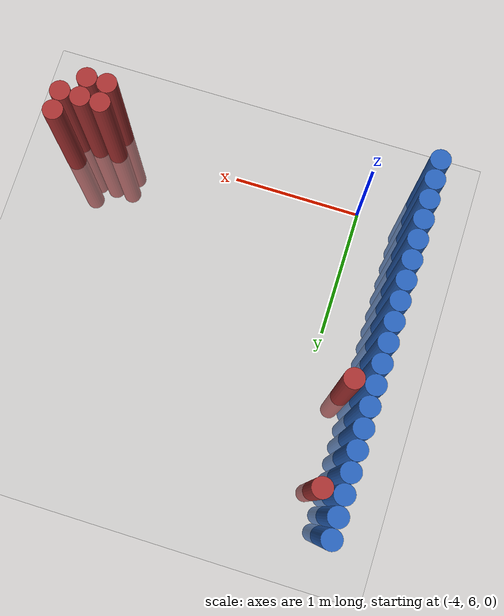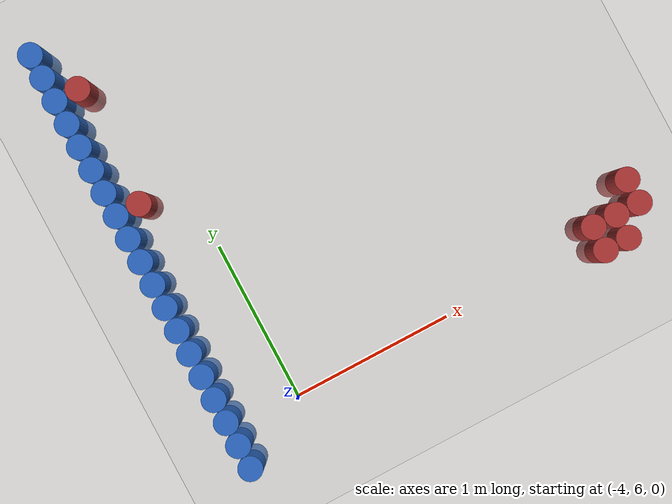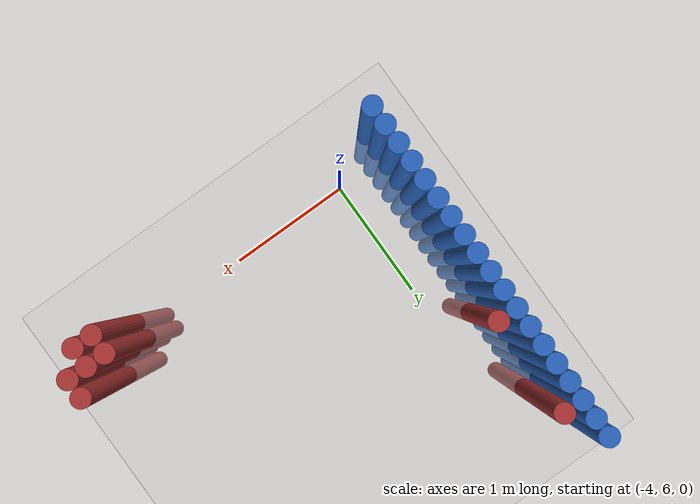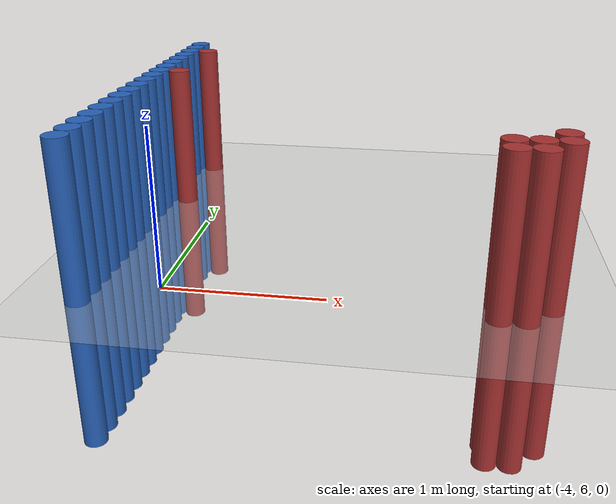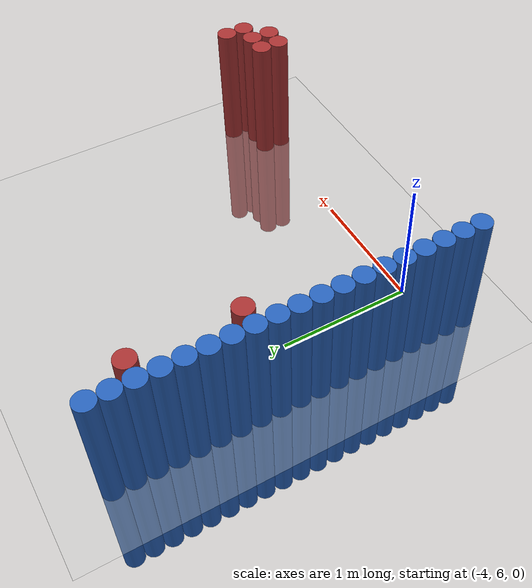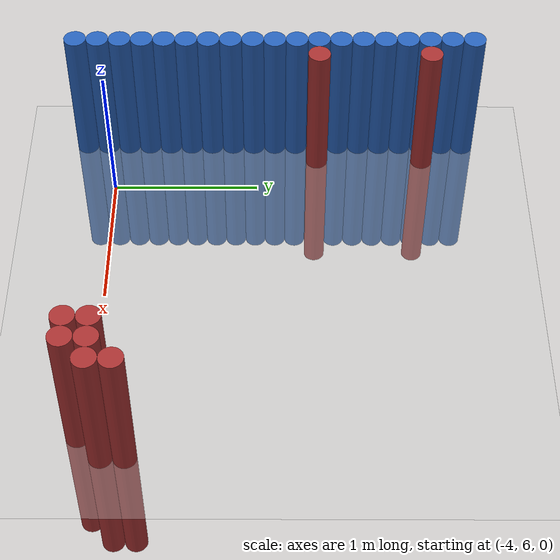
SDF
<sdf version="1.6">
 <world name="default">
  <model name="ground_plane">
   <static>1</static>
   <link name="link">
    <collision name="collision">
     <geometry><plane><normal>0 0 1</normal><size>100 100</size></plane></geometry>
     <surface><friction><ode><mu>100</mu><mu2>50</mu2></ode></friction></surface>
    </collision>
    <visual name="visual">
     <cast_shadows>0</cast_shadows>
     <geometry><plane><normal>0 0 1</normal><size>100 100</size></plane></geometry>
     <material>
      <script><uri>file://media/materials/scripts/gazebo.material</uri><name>Gazebo/Grey</name></script>
     </material>
    </visual>
   </link>
  </model>
  <model name="unit_cylinder_100">
   <static>1</static>
   <pose>-4.425000 5.775000 0.000000 0.000000 0.000000 0.000000</pose>
   <link name="link">
    <inertial>
     <mass>1</mass>
     <inertia><ixx>0.145833</ixx><ixy>0</ixy><ixz>0</ixz><iyy>0.145833</iyy><iyz>0</iyz><izz>0.125</izz></inertia>
    </inertial>
    <collision name="collision">
     <geometry><cylinder><radius>0.075000</radius><length>2</length></cylinder></geometry>
    </collision>
    <visual name="visual">
     <geometry><cylinder><radius>0.075000</radius><length>2</length></cylinder></geometry>
     <material>
      <ambient>0.152000 0.379000 0.720000 1</ambient>
      <diffuse>0.152000 0.379000 0.720000 1</diffuse>
     </material>
     <material>
      <script><name>Gazebo/Grey</name><uri>file://media/materials/scripts/gazebo.material</uri></script>
     </material>
    </visual>
   </link>
  </model>
  <model name="unit_cylinder_101">
   <static>1</static>
   <pose>-4.425000 5.925000 0.000000 0.000000 0.000000 0.000000</pose>
   <link name="link">
    <inertial>
     <mass>1</mass>
     <inertia><ixx>0.145833</ixx><ixy>0</ixy><ixz>0</ixz><iyy>0.145833</iyy><iyz>0</iyz><izz>0.125</izz></inertia>
    </inertial>
    <collision name="collision">
     <geometry><cylinder><radius>0.075000</radius><length>2</length></cylinder></geometry>
    </collision>
    <visual name="visual">
     <geometry><cylinder><radius>0.075000</radius><length>2</length></cylinder></geometry>
     <material>
      <ambient>0.152000 0.379000 0.720000 1</ambient>
      <diffuse>0.152000 0.379000 0.720000 1</diffuse>
     </material>
     <material>
      <script><name>Gazebo/Grey</name><uri>file://media/materials/scripts/gazebo.material</uri></script>
     </material>
    </visual>
   </link>
  </model>
  <model name="unit_cylinder_102">
   <static>1</static>
   <pose>-4.425000 6.075000 0.000000 0.000000 0.000000 0.000000</pose>
   <link name="link">
    <inertial>
     <mass>1</mass>
     <inertia><ixx>0.145833</ixx><ixy>0</ixy><ixz>0</ixz><iyy>0.145833</iyy><iyz>0</iyz><izz>0.125</izz></inertia>
    </inertial>
    <collision name="collision">
     <geometry><cylinder><radius>0.075000</radius><length>2</length></cylinder></geometry>
    </collision>
    <visual name="visual">
     <geometry><cylinder><radius>0.075000</radius><length>2</length></cylinder></geometry>
     <material>
      <ambient>0.152000 0.379000 0.720000 1</ambient>
      <diffuse>0.152000 0.379000 0.720000 1</diffuse>
     </material>
     <material>
      <script><name>Gazebo/Grey</name><uri>file://media/materials/scripts/gazebo.material</uri></script>
     </material>
    </visual>
   </link>
  </model>
  <model name="unit_cylinder_103">
   <static>1</static>
   <pose>-4.425000 6.225000 0.000000 0.000000 0.000000 0.000000</pose>
   <link name="link">
    <inertial>
     <mass>1</mass>
     <inertia><ixx>0.145833</ixx><ixy>0</ixy><ixz>0</ixz><iyy>0.145833</iyy><iyz>0</iyz><izz>0.125</izz></inertia>
    </inertial>
    <collision name="collision">
     <geometry><cylinder><radius>0.075000</radius><length>2</length></cylinder></geometry>
    </collision>
    <visual name="visual">
     <geometry><cylinder><radius>0.075000</radius><length>2</length></cylinder></geometry>
     <material>
      <ambient>0.152000 0.379000 0.720000 1</ambient>
      <diffuse>0.152000 0.379000 0.720000 1</diffuse>
     </material>
     <material>
      <script><name>Gazebo/Grey</name><uri>file://media/materials/scripts/gazebo.material</uri></script>
     </material>
    </visual>
   </link>
  </model>
  <model name="unit_cylinder_104">
   <static>1</static>
   <pose>-4.425000 6.375000 0.000000 0.000000 0.000000 0.000000</pose>
   <link name="link">
    <inertial>
     <mass>1</mass>
     <inertia><ixx>0.145833</ixx><ixy>0</ixy><ixz>0</ixz><iyy>0.145833</iyy><iyz>0</iyz><izz>0.125</izz></inertia>
    </inertial>
    <collision name="collision">
     <geometry><cylinder><radius>0.075000</radius><length>2</length></cylinder></geometry>
    </collision>
    <visual name="visual">
     <geometry><cylinder><radius>0.075000</radius><length>2</length></cylinder></geometry>
     <material>
      <ambient>0.152000 0.379000 0.720000 1</ambient>
      <diffuse>0.152000 0.379000 0.720000 1</diffuse>
     </material>
     <material>
      <script><name>Gazebo/Grey</name><uri>file://media/materials/scripts/gazebo.material</uri></script>
     </material>
    </visual>
   </link>
  </model>
  <model name="unit_cylinder_105">
   <static>1</static>
   <pose>-4.425000 6.525000 0.000000 0.000000 0.000000 0.000000</pose>
   <link name="link">
    <inertial>
     <mass>1</mass>
     <inertia><ixx>0.145833</ixx><ixy>0</ixy><ixz>0</ixz><iyy>0.145833</iyy><iyz>0</iyz><izz>0.125</izz></inertia>
    </inertial>
    <collision name="collision">
     <geometry><cylinder><radius>0.075000</radius><length>2</length></cylinder></geometry>
    </collision>
    <visual name="visual">
     <geometry><cylinder><radius>0.075000</radius><length>2</length></cylinder></geometry>
     <material>
      <ambient>0.152000 0.379000 0.720000 1</ambient>
      <diffuse>0.152000 0.379000 0.720000 1</diffuse>
     </material>
     <material>
      <script><name>Gazebo/Grey</name><uri>file://media/materials/scripts/gazebo.material</uri></script>
     </material>
    </visual>
   </link>
  </model>
  <model name="unit_cylinder_106">
   <static>1</static>
   <pose>-4.425000 6.675000 0.000000 0.000000 0.000000 0.000000</pose>
   <link name="link">
    <inertial>
     <mass>1</mass>
     <inertia><ixx>0.145833</ixx><ixy>0</ixy><ixz>0</ixz><iyy>0.145833</iyy><iyz>0</iyz><izz>0.125</izz></inertia>
    </inertial>
    <collision name="collision">
     <geometry><cylinder><radius>0.075000</radius><length>2</length></cylinder></geometry>
    </collision>
    <visual name="visual">
     <geometry><cylinder><radius>0.075000</radius><length>2</length></cylinder></geometry>
     <material>
      <ambient>0.152000 0.379000 0.720000 1</ambient>
      <diffuse>0.152000 0.379000 0.720000 1</diffuse>
     </material>
     <material>
      <script><name>Gazebo/Grey</name><uri>file://media/materials/scripts/gazebo.material</uri></script>
     </material>
    </visual>
   </link>
  </model>
  <model name="unit_cylinder_107">
   <static>1</static>
   <pose>-4.425000 6.825000 0.000000 0.000000 0.000000 0.000000</pose>
   <link name="link">
    <inertial>
     <mass>1</mass>
     <inertia><ixx>0.145833</ixx><ixy>0</ixy><ixz>0</ixz><iyy>0.145833</iyy><iyz>0</iyz><izz>0.125</izz></inertia>
    </inertial>
    <collision name="collision">
     <geometry><cylinder><radius>0.075000</radius><length>2</length></cylinder></geometry>
    </collision>
    <visual name="visual">
     <geometry><cylinder><radius>0.075000</radius><length>2</length></cylinder></geometry>
     <material>
      <ambient>0.152000 0.379000 0.720000 1</ambient>
      <diffuse>0.152000 0.379000 0.720000 1</diffuse>
     </material>
     <material>
      <script><name>Gazebo/Grey</name><uri>file://media/materials/scripts/gazebo.material</uri></script>
     </material>
    </visual>
   </link>
  </model>
  <model name="unit_cylinder_108">
   <static>1</static>
   <pose>-4.425000 6.975000 0.000000 0.000000 0.000000 0.000000</pose>
   <link name="link">
    <inertial>
     <mass>1</mass>
     <inertia><ixx>0.145833</ixx><ixy>0</ixy><ixz>0</ixz><iyy>0.145833</iyy><iyz>0</iyz><izz>0.125</izz></inertia>
    </inertial>
    <collision name="collision">
     <geometry><cylinder><radius>0.075000</radius><length>2</length></cylinder></geometry>
    </collision>
    <visual name="visual">
     <geometry><cylinder><radius>0.075000</radius><length>2</length></cylinder></geometry>
     <material>
      <ambient>0.152000 0.379000 0.720000 1</ambient>
      <diffuse>0.152000 0.379000 0.720000 1</diffuse>
     </material>
     <material>
      <script><name>Gazebo/Grey</name><uri>file://media/materials/scripts/gazebo.material</uri></script>
     </material>
    </visual>
   </link>
  </model>
  <model name="unit_cylinder_109">
   <static>1</static>
   <pose>-4.425000 7.125000 0.000000 0.000000 0.000000 0.000000</pose>
   <link name="link">
    <inertial>
     <mass>1</mass>
     <inertia><ixx>0.145833</ixx><ixy>0</ixy><ixz>0</ixz><iyy>0.145833</iyy><iyz>0</iyz><izz>0.125</izz></inertia>
    </inertial>
    <collision name="collision">
     <geometry><cylinder><radius>0.075000</radius><length>2</length></cylinder></geometry>
    </collision>
    <visual name="visual">
     <geometry><cylinder><radius>0.075000</radius><length>2</length></cylinder></geometry>
     <material>
      <ambient>0.152000 0.379000 0.720000 1</ambient>
      <diffuse>0.152000 0.379000 0.720000 1</diffuse>
     </material>
     <material>
      <script><name>Gazebo/Grey</name><uri>file://media/materials/scripts/gazebo.material</uri></script>
     </material>
    </visual>
   </link>
  </model>
  <model name="unit_cylinder_110">
   <static>1</static>
   <pose>-4.425000 7.275000 0.000000 0.000000 0.000000 0.000000</pose>
   <link name="link">
    <inertial>
     <mass>1</mass>
     <inertia><ixx>0.145833</ixx><ixy>0</ixy><ixz>0</ixz><iyy>0.145833</iyy><iyz>0</iyz><izz>0.125</izz></inertia>
    </inertial>
    <collision name="collision">
     <geometry><cylinder><radius>0.075000</radius><length>2</length></cylinder></geometry>
    </collision>
    <visual name="visual">
     <geometry><cylinder><radius>0.075000</radius><length>2</length></cylinder></geometry>
     <material>
      <ambient>0.152000 0.379000 0.720000 1</ambient>
      <diffuse>0.152000 0.379000 0.720000 1</diffuse>
     </material>
     <material>
      <script><name>Gazebo/Grey</name><uri>file://media/materials/scripts/gazebo.material</uri></script>
     </material>
    </visual>
   </link>
  </model>
  <model name="unit_cylinder_111">
   <static>1</static>
   <pose>-4.425000 7.425000 0.000000 0.000000 0.000000 0.000000</pose>
   <link name="link">
    <inertial>
     <mass>1</mass>
     <inertia><ixx>0.145833</ixx><ixy>0</ixy><ixz>0</ixz><iyy>0.145833</iyy><iyz>0</iyz><izz>0.125</izz></inertia>
    </inertial>
    <collision name="collision">
     <geometry><cylinder><radius>0.075000</radius><length>2</length></cylinder></geometry>
    </collision>
    <visual name="visual">
     <geometry><cylinder><radius>0.075000</radius><length>2</length></cylinder></geometry>
     <material>
      <ambient>0.152000 0.379000 0.720000 1</ambient>
      <diffuse>0.152000 0.379000 0.720000 1</diffuse>
     </material>
     <material>
      <script><name>Gazebo/Grey</name><uri>file://media/materials/scripts/gazebo.material</uri></script>
     </material>
    </visual>
   </link>
  </model>
  <model name="unit_cylinder_112">
   <static>1</static>
   <pose>-4.425000 7.575000 0.000000 0.000000 0.000000 0.000000</pose>
   <link name="link">
    <inertial>
     <mass>1</mass>
     <inertia><ixx>0.145833</ixx><ixy>0</ixy><ixz>0</ixz><iyy>0.145833</iyy><iyz>0</iyz><izz>0.125</izz></inertia>
    </inertial>
    <collision name="collision">
     <geometry><cylinder><radius>0.075000</radius><length>2</length></cylinder></geometry>
    </collision>
    <visual name="visual">
     <geometry><cylinder><radius>0.075000</radius><length>2</length></cylinder></geometry>
     <material>
      <ambient>0.152000 0.379000 0.720000 1</ambient>
      <diffuse>0.152000 0.379000 0.720000 1</diffuse>
     </material>
     <material>
      <script><name>Gazebo/Grey</name><uri>file://media/materials/scripts/gazebo.material</uri></script>
     </material>
    </visual>
   </link>
  </model>
  <model name="unit_cylinder_113">
   <static>1</static>
   <pose>-4.425000 7.725000 0.000000 0.000000 0.000000 0.000000</pose>
   <link name="link">
    <inertial>
     <mass>1</mass>
     <inertia><ixx>0.145833</ixx><ixy>0</ixy><ixz>0</ixz><iyy>0.145833</iyy><iyz>0</iyz><izz>0.125</izz></inertia>
    </inertial>
    <collision name="collision">
     <geometry><cylinder><radius>0.075000</radius><length>2</length></cylinder></geometry>
    </collision>
    <visual name="visual">
     <geometry><cylinder><radius>0.075000</radius><length>2</length></cylinder></geometry>
     <material>
      <ambient>0.152000 0.379000 0.720000 1</ambient>
      <diffuse>0.152000 0.379000 0.720000 1</diffuse>
     </material>
     <material>
      <script><name>Gazebo/Grey</name><uri>file://media/materials/scripts/gazebo.material</uri></script>
     </material>
    </visual>
   </link>
  </model>
  <model name="unit_cylinder_114">
   <static>1</static>
   <pose>-4.425000 7.875000 0.000000 0.000000 0.000000 0.000000</pose>
   <link name="link">
    <inertial>
     <mass>1</mass>
     <inertia><ixx>0.145833</ixx><ixy>0</ixy><ixz>0</ixz><iyy>0.145833</iyy><iyz>0</iyz><izz>0.125</izz></inertia>
    </inertial>
    <collision name="collision">
     <geometry><cylinder><radius>0.075000</radius><length>2</length></cylinder></geometry>
    </collision>
    <visual name="visual">
     <geometry><cylinder><radius>0.075000</radius><length>2</length></cylinder></geometry>
     <material>
      <ambient>0.152000 0.379000 0.720000 1</ambient>
      <diffuse>0.152000 0.379000 0.720000 1</diffuse>
     </material>
     <material>
      <script><name>Gazebo/Grey</name><uri>file://media/materials/scripts/gazebo.material</uri></script>
     </material>
    </visual>
   </link>
  </model>
  <model name="unit_cylinder_115">
   <static>1</static>
   <pose>-4.425000 8.025000 0.000000 0.000000 0.000000 0.000000</pose>
   <link name="link">
    <inertial>
     <mass>1</mass>
     <inertia><ixx>0.145833</ixx><ixy>0</ixy><ixz>0</ixz><iyy>0.145833</iyy><iyz>0</iyz><izz>0.125</izz></inertia>
    </inertial>
    <collision name="collision">
     <geometry><cylinder><radius>0.075000</radius><length>2</length></cylinder></geometry>
    </collision>
    <visual name="visual">
     <geometry><cylinder><radius>0.075000</radius><length>2</length></cylinder></geometry>
     <material>
      <ambient>0.152000 0.379000 0.720000 1</ambient>
      <diffuse>0.152000 0.379000 0.720000 1</diffuse>
     </material>
     <material>
      <script><name>Gazebo/Grey</name><uri>file://media/materials/scripts/gazebo.material</uri></script>
     </material>
    </visual>
   </link>
  </model>
  <model name="unit_cylinder_116">
   <static>1</static>
   <pose>-4.425000 8.175000 0.000000 0.000000 0.000000 0.000000</pose>
   <link name="link">
    <inertial>
     <mass>1</mass>
     <inertia><ixx>0.145833</ixx><ixy>0</ixy><ixz>0</ixz><iyy>0.145833</iyy><iyz>0</iyz><izz>0.125</izz></inertia>
    </inertial>
    <collision name="collision">
     <geometry><cylinder><radius>0.075000</radius><length>2</length></cylinder></geometry>
    </collision>
    <visual name="visual">
     <geometry><cylinder><radius>0.075000</radius><length>2</length></cylinder></geometry>
     <material>
      <ambient>0.152000 0.379000 0.720000 1</ambient>
      <diffuse>0.152000 0.379000 0.720000 1</diffuse>
     </material>
     <material>
      <script><name>Gazebo/Grey</name><uri>file://media/materials/scripts/gazebo.material</uri></script>
     </material>
    </visual>
   </link>
  </model>
  <model name="unit_cylinder_117">
   <static>1</static>
   <pose>-4.425000 8.325000 0.000000 0.000000 0.000000 0.000000</pose>
   <link name="link">
    <inertial>
     <mass>1</mass>
     <inertia><ixx>0.145833</ixx><ixy>0</ixy><ixz>0</ixz><iyy>0.145833</iyy><iyz>0</iyz><izz>0.125</izz></inertia>
    </inertial>
    <collision name="collision">
     <geometry><cylinder><radius>0.075000</radius><length>2</length></cylinder></geometry>
    </collision>
    <visual name="visual">
     <geometry><cylinder><radius>0.075000</radius><length>2</length></cylinder></geometry>
     <material>
      <ambient>0.152000 0.379000 0.720000 1</ambient>
      <diffuse>0.152000 0.379000 0.720000 1</diffuse>
     </material>
     <material>
      <script><name>Gazebo/Grey</name><uri>file://media/materials/scripts/gazebo.material</uri></script>
     </material>
    </visual>
   </link>
  </model>
  <model name="unit_cylinder_118">
   <static>1</static>
   <pose>-4.425000 8.475000 0.000000 0.000000 0.000000 0.000000</pose>
   <link name="link">
    <inertial>
     <mass>1</mass>
     <inertia><ixx>0.145833</ixx><ixy>0</ixy><ixz>0</ixz><iyy>0.145833</iyy><iyz>0</iyz><izz>0.125</izz></inertia>
    </inertial>
    <collision name="collision">
     <geometry><cylinder><radius>0.075000</radius><length>2</length></cylinder></geometry>
    </collision>
    <visual name="visual">
     <geometry><cylinder><radius>0.075000</radius><length>2</length></cylinder></geometry>
     <material>
      <ambient>0.152000 0.379000 0.720000 1</ambient>
      <diffuse>0.152000 0.379000 0.720000 1</diffuse>
     </material>
     <material>
      <script><name>Gazebo/Grey</name><uri>file://media/materials/scripts/gazebo.material</uri></script>
     </material>
    </visual>
   </link>
  </model>
  <model name="unit_cylinder_126">
   <static>1</static>
   <pose>-4.275000 7.425000 0.000000 0.000000 0.000000 0.000000</pose>
   <link name="link">
    <inertial>
     <mass>1</mass>
     <inertia><ixx>0.145833</ixx><ixy>0</ixy><ixz>0</ixz><iyy>0.145833</iyy><iyz>0</iyz><izz>0.125</izz></inertia>
    </inertial>
    <collision name="collision">
     <geometry><cylinder><radius>0.075000</radius><length>2</length></cylinder></geometry>
    </collision>
    <visual name="visual">
     <geometry><cylinder><radius>0.075000</radius><length>2</length></cylinder></geometry>
     <material>
      <ambient>0.648000 0.192000 0.192000 1</ambient>
      <diffuse>0.648000 0.192000 0.192000 1</diffuse>
     </material>
     <material>
      <script><name>Gazebo/Grey</name><uri>file://media/materials/scripts/gazebo.material</uri></script>
     </material>
    </visual>
   </link>
  </model>
  <model name="unit_cylinder_127">
   <static>1</static>
   <pose>-4.275000 8.175000 0.000000 0.000000 0.000000 0.000000</pose>
   <link name="link">
    <inertial>
     <mass>1</mass>
     <inertia><ixx>0.145833</ixx><ixy>0</ixy><ixz>0</ixz><iyy>0.145833</iyy><iyz>0</iyz><izz>0.125</izz></inertia>
    </inertial>
    <collision name="collision">
     <geometry><cylinder><radius>0.075000</radius><length>2</length></cylinder></geometry>
    </collision>
    <visual name="visual">
     <geometry><cylinder><radius>0.075000</radius><length>2</length></cylinder></geometry>
     <material>
      <ambient>0.648000 0.192000 0.192000 1</ambient>
      <diffuse>0.648000 0.192000 0.192000 1</diffuse>
     </material>
     <material>
      <script><name>Gazebo/Grey</name><uri>file://media/materials/scripts/gazebo.material</uri></script>
     </material>
    </visual>
   </link>
  </model>
  <model name="unit_cylinder_145">
   <static>1</static>
   <pose>-2.025000 5.925000 0.000000 0.000000 0.000000 0.000000</pose>
   <link name="link">
    <inertial>
     <mass>1</mass>
     <inertia><ixx>0.145833</ixx><ixy>0</ixy><ixz>0</ixz><iyy>0.145833</iyy><iyz>0</iyz><izz>0.125</izz></inertia>
    </inertial>
    <collision name="collision">
     <geometry><cylinder><radius>0.075000</radius><length>2</length></cylinder></geometry>
    </collision>
    <visual name="visual">
     <geometry><cylinder><radius>0.075000</radius><length>2</length></cylinder></geometry>
     <material>
      <ambient>0.648000 0.192000 0.192000 1</ambient>
      <diffuse>0.648000 0.192000 0.192000 1</diffuse>
     </material>
     <material>
      <script><name>Gazebo/Grey</name><uri>file://media/materials/scripts/gazebo.material</uri></script>
     </material>
    </visual>
   </link>
  </model>
  <model name="unit_cylinder_146">
   <static>1</static>
   <pose>-2.025000 6.075000 0.000000 0.000000 0.000000 0.000000</pose>
   <link name="link">
    <inertial>
     <mass>1</mass>
     <inertia><ixx>0.145833</ixx><ixy>0</ixy><ixz>0</ixz><iyy>0.145833</iyy><iyz>0</iyz><izz>0.125</izz></inertia>
    </inertial>
    <collision name="collision">
     <geometry><cylinder><radius>0.075000</radius><length>2</length></cylinder></geometry>
    </collision>
    <visual name="visual">
     <geometry><cylinder><radius>0.075000</radius><length>2</length></cylinder></geometry>
     <material>
      <ambient>0.648000 0.192000 0.192000 1</ambient>
      <diffuse>0.648000 0.192000 0.192000 1</diffuse>
     </material>
     <material>
      <script><name>Gazebo/Grey</name><uri>file://media/materials/scripts/gazebo.material</uri></script>
     </material>
    </visual>
   </link>
  </model>
  <model name="unit_cylinder_148">
   <static>1</static>
   <pose>-1.875000 5.925000 0.000000 0.000000 0.000000 0.000000</pose>
   <link name="link">
    <inertial>
     <mass>1</mass>
     <inertia><ixx>0.145833</ixx><ixy>0</ixy><ixz>0</ixz><iyy>0.145833</iyy><iyz>0</iyz><izz>0.125</izz></inertia>
    </inertial>
    <collision name="collision">
     <geometry><cylinder><radius>0.075000</radius><length>2</length></cylinder></geometry>
    </collision>
    <visual name="visual">
     <geometry><cylinder><radius>0.075000</radius><length>2</length></cylinder></geometry>
     <material>
      <ambient>0.648000 0.192000 0.192000 1</ambient>
      <diffuse>0.648000 0.192000 0.192000 1</diffuse>
     </material>
     <material>
      <script><name>Gazebo/Grey</name><uri>file://media/materials/scripts/gazebo.material</uri></script>
     </material>
    </visual>
   </link>
  </model>
  <model name="unit_cylinder_149">
   <static>1</static>
   <pose>-1.875000 6.075000 0.000000 0.000000 0.000000 0.000000</pose>
   <link name="link">
    <inertial>
     <mass>1</mass>
     <inertia><ixx>0.145833</ixx><ixy>0</ixy><ixz>0</ixz><iyy>0.145833</iyy><iyz>0</iyz><izz>0.125</izz></inertia>
    </inertial>
    <collision name="collision">
     <geometry><cylinder><radius>0.075000</radius><length>2</length></cylinder></geometry>
    </collision>
    <visual name="visual">
     <geometry><cylinder><radius>0.075000</radius><length>2</length></cylinder></geometry>
     <material>
      <ambient>0.648000 0.192000 0.192000 1</ambient>
      <diffuse>0.648000 0.192000 0.192000 1</diffuse>
     </material>
     <material>
      <script><name>Gazebo/Grey</name><uri>file://media/materials/scripts/gazebo.material</uri></script>
     </material>
    </visual>
   </link>
  </model>
  <model name="unit_cylinder_152">
   <static>1</static>
   <pose>-1.725000 6.075000 0.000000 0.000000 0.000000 0.000000</pose>
   <link name="link">
    <inertial>
     <mass>1</mass>
     <inertia><ixx>0.145833</ixx><ixy>0</ixy><ixz>0</ixz><iyy>0.145833</iyy><iyz>0</iyz><izz>0.125</izz></inertia>
    </inertial>
    <collision name="collision">
     <geometry><cylinder><radius>0.075000</radius><length>2</length></cylinder></geometry>
    </collision>
    <visual name="visual">
     <geometry><cylinder><radius>0.075000</radius><length>2</length></cylinder></geometry>
     <material>
      <ambient>0.648000 0.192000 0.192000 1</ambient>
      <diffuse>0.648000 0.192000 0.192000 1</diffuse>
     </material>
     <material>
      <script><name>Gazebo/Grey</name><uri>file://media/materials/scripts/gazebo.material</uri></script>
     </material>
    </visual>
   </link>
  </model>
  <model name="unit_cylinder_153">
   <static>1</static>
   <pose>-1.725000 6.225000 0.000000 0.000000 0.000000 0.000000</pose>
   <link name="link">
    <inertial>
     <mass>1</mass>
     <inertia><ixx>0.145833</ixx><ixy>0</ixy><ixz>0</ixz><iyy>0.145833</iyy><iyz>0</iyz><izz>0.125</izz></inertia>
    </inertial>
    <collision name="collision">
     <geometry><cylinder><radius>0.075000</radius><length>2</length></cylinder></geometry>
    </collision>
    <visual name="visual">
     <geometry><cylinder><radius>0.075000</radius><length>2</length></cylinder></geometry>
     <material>
      <ambient>0.648000 0.192000 0.192000 1</ambient>
      <diffuse>0.648000 0.192000 0.192000 1</diffuse>
     </material>
     <material>
      <script><name>Gazebo/Grey</name><uri>file://media/materials/scripts/gazebo.material</uri></script>
     </material>
    </visual>
   </link>
  </model>
 </world>
</sdf>
